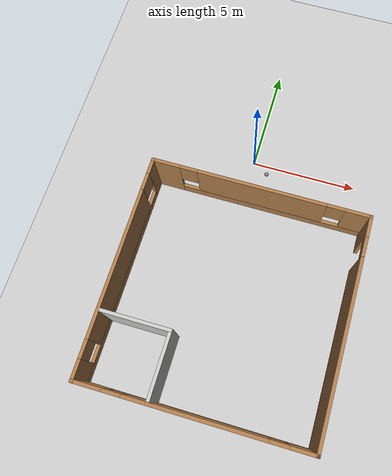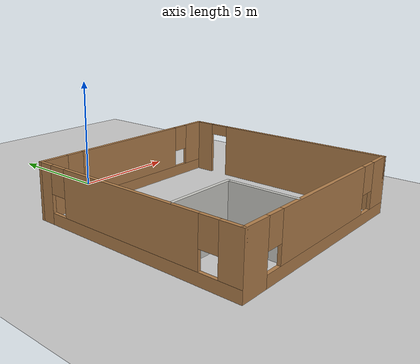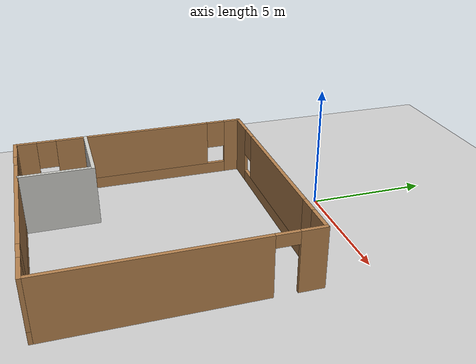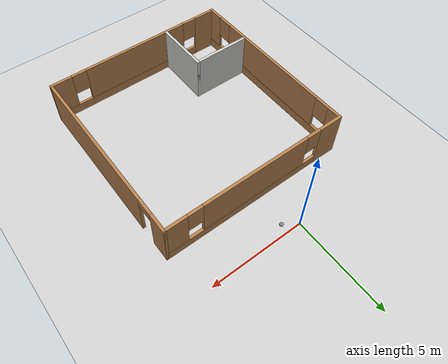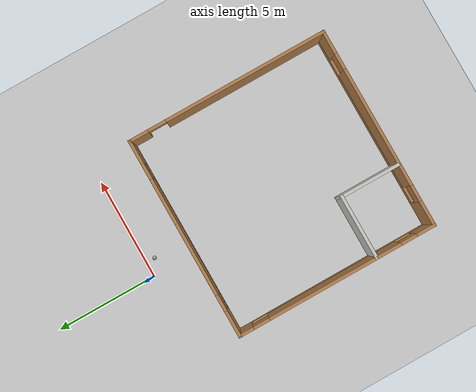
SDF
<sdf version="1.6">
 <world name="default">
  <plugin name="hello" filename="libhello.so"/>
  <light name="sun" type="directional">
   <pose>0 0 10 0 -0 0</pose>
   <diffuse>0.8 0.8 0.8 1</diffuse>
   <specular>0.2 0.2 0.2 1</specular>
   <attenuation>
    <range>1000</range>
    <constant>0.9</constant>
    <linear>0.01</linear>
    <quadratic>0.001</quadratic>
   </attenuation>
   <direction>-0.5 0.1 -0.9</direction>
  </light>
  <model name="ground_plane">
   <static>1</static>
   <link name="link">
    <collision name="collision">
     <geometry><plane><normal>0 0 1</normal><size>100 100</size></plane></geometry>
     <surface>
      <contact><collide_bitmask>65535</collide_bitmask></contact>
      <friction><ode><mu>100</mu><mu2>50</mu2></ode></friction>
     </surface>
    </collision>
    <visual name="visual">
     <cast_shadows>0</cast_shadows>
     <geometry><plane><normal>0 0 1</normal><size>100 100</size></plane></geometry>
     <material>
      <script><uri>file://media/materials/scripts/gazebo.material</uri><name>Gazebo/Grey</name></script>
     </material>
    </visual>
   </link>
  </model>
  <gravity>0 0 -9.8</gravity>
  <magnetic_field>6e-06 2.3e-05 -4.2e-05</magnetic_field>
  <atmosphere type="adiabatic"/>
  <physics name="default_physics" default="0" type="ode">
   <max_step_size>0.001</max_step_size>
   <real_time_factor>1</real_time_factor>
   <real_time_update_rate>1000</real_time_update_rate>
  </physics>
  <scene><ambient>0.4 0.4 0.4 1</ambient><background>0.7 0.7 0.7 1</background><shadows>1</shadows></scene>
  <spherical_coordinates>
   <surface_model>EARTH_WGS84</surface_model>
   <latitude_deg>0</latitude_deg>
   <longitude_deg>0</longitude_deg>
   <elevation>0</elevation>
   <heading_deg>0</heading_deg>
  </spherical_coordinates>
  <model name="building">
   <pose>0.805 -7.135 0 0 -0 0</pose>
   <link name="Wall_64">
    <pose>0 4.925 0 0 -0 0</pose>
    <visual name="Wall_64_Visual_0">
     <pose>-4.3325 0 1.25 0 -0 0</pose>
     <geometry><box><size>1.335 0.15 2.5</size></box></geometry>
     <material>
      <script><uri>file://media/materials/scripts/gazebo.material</uri><name>Gazebo/Wood</name></script>
      <ambient>1 1 1 1</ambient>
     </material>
     <meta><layer>0</layer></meta>
    </visual>
    <collision name="Wall_64_Collision_0">
     <geometry><box><size>1.335 0.15 2.5</size></box></geometry>
     <pose>-4.3325 0 1.25 0 -0 0</pose>
    </collision>
    <visual name="Wall_64_Visual_1">
     <pose>0.6675 0 0.25 0 -0 0</pose>
     <geometry><box><size>8.665 0.15 0.5</size></box></geometry>
     <material>
      <script><uri>file://media/materials/scripts/gazebo.material</uri><name>Gazebo/Wood</name></script>
      <ambient>1 1 1 1</ambient>
     </material>
     <meta><layer>0</layer></meta>
    </visual>
    <collision name="Wall_64_Collision_1">
     <geometry><box><size>8.665 0.15 0.5</size></box></geometry>
     <pose>0.6675 0 0.25 0 -0 0</pose>
    </collision>
    <visual name="Wall_64_Visual_2">
     <pose>0.065 0 1.5 0 -0 0</pose>
     <geometry><box><size>5.86 0.15 2</size></box></geometry>
     <material>
      <script><uri>file://media/materials/scripts/gazebo.material</uri><name>Gazebo/Wood</name></script>
      <ambient>1 1 1 1</ambient>
     </material>
     <meta><layer>0</layer></meta>
    </visual>
    <collision name="Wall_64_Collision_2">
     <geometry><box><size>5.86 0.15 2</size></box></geometry>
     <pose>0.065 0 1.5 0 -0 0</pose>
    </collision>
    <visual name="Wall_64_Visual_3">
     <pose>4.3975 0 1.5 0 -0 0</pose>
     <geometry><box><size>1.205 0.15 2</size></box></geometry>
     <material>
      <script><uri>file://media/materials/scripts/gazebo.material</uri><name>Gazebo/Wood</name></script>
      <ambient>1 1 1 1</ambient>
     </material>
     <meta><layer>0</layer></meta>
    </visual>
    <collision name="Wall_64_Collision_3">
     <geometry><box><size>1.205 0.15 2</size></box></geometry>
     <pose>4.3975 0 1.5 0 -0 0</pose>
    </collision>
    <visual name="Wall_64_Visual_4">
     <pose>-3.265 0 1.9 0 -0 0</pose>
     <geometry><box><size>0.8 0.15 1.2</size></box></geometry>
     <material>
      <script><uri>file://media/materials/scripts/gazebo.material</uri><name>Gazebo/Wood</name></script>
      <ambient>1 1 1 1</ambient>
     </material>
     <meta><layer>0</layer></meta>
    </visual>
    <collision name="Wall_64_Collision_4">
     <geometry><box><size>0.8 0.15 1.2</size></box></geometry>
     <pose>-3.265 0 1.9 0 -0 0</pose>
    </collision>
    <visual name="Wall_64_Visual_5">
     <pose>3.395 0 1.9 0 -0 0</pose>
     <geometry><box><size>0.8 0.15 1.2</size></box></geometry>
     <material>
      <script><uri>file://media/materials/scripts/gazebo.material</uri><name>Gazebo/Wood</name></script>
      <ambient>1 1 1 1</ambient>
     </material>
     <meta><layer>0</layer></meta>
    </visual>
    <collision name="Wall_64_Collision_5">
     <geometry><box><size>0.8 0.15 1.2</size></box></geometry>
     <pose>3.395 0 1.9 0 -0 0</pose>
    </collision>
   </link>
   <link name="Wall_66">
    <pose>-4.925 0 0 0 0 -1.5708</pose>
    <visual name="Wall_66_Visual_0">
     <pose>-4.6125 0 1.25 0 -0 0</pose>
     <geometry><box><size>0.775 0.15 2.5</size></box></geometry>
     <material>
      <script><uri>file://media/materials/scripts/gazebo.material</uri><name>Gazebo/Wood</name></script>
      <ambient>1 1 1 1</ambient>
     </material>
     <meta><layer>0</layer></meta>
    </visual>
    <collision name="Wall_66_Collision_0">
     <geometry><box><size>0.775 0.15 2.5</size></box></geometry>
     <pose>-4.6125 0 1.25 0 -0 0</pose>
    </collision>
    <visual name="Wall_66_Visual_1">
     <pose>0.3875 0 0.25 0 -0 0</pose>
     <geometry><box><size>9.225 0.15 0.5</size></box></geometry>
     <material>
      <script><uri>file://media/materials/scripts/gazebo.material</uri><name>Gazebo/Wood</name></script>
      <ambient>1 1 1 1</ambient>
     </material>
     <meta><layer>0</layer></meta>
    </visual>
    <collision name="Wall_66_Collision_1">
     <geometry><box><size>9.225 0.15 0.5</size></box></geometry>
     <pose>0.3875 0 0.25 0 -0 0</pose>
    </collision>
    <visual name="Wall_66_Visual_2">
     <pose>-0.085 0 1.5 0 -0 0</pose>
     <geometry><box><size>6.68 0.15 2</size></box></geometry>
     <material>
      <script><uri>file://media/materials/scripts/gazebo.material</uri><name>Gazebo/Wood</name></script>
      <ambient>1 1 1 1</ambient>
     </material>
     <meta><layer>0</layer></meta>
    </visual>
    <collision name="Wall_66_Collision_2">
     <geometry><box><size>6.68 0.15 2</size></box></geometry>
     <pose>-0.085 0 1.5 0 -0 0</pose>
    </collision>
    <visual name="Wall_66_Visual_3">
     <pose>4.5275 0 1.5 0 -0 0</pose>
     <geometry><box><size>0.945 0.15 2</size></box></geometry>
     <material>
      <script><uri>file://media/materials/scripts/gazebo.material</uri><name>Gazebo/Wood</name></script>
      <ambient>1 1 1 1</ambient>
     </material>
     <meta><layer>0</layer></meta>
    </visual>
    <collision name="Wall_66_Collision_3">
     <geometry><box><size>0.945 0.15 2</size></box></geometry>
     <pose>4.5275 0 1.5 0 -0 0</pose>
    </collision>
    <visual name="Wall_66_Visual_4">
     <pose>-3.825 0 1.9 0 -0 0</pose>
     <geometry><box><size>0.8 0.15 1.2</size></box></geometry>
     <material>
      <script><uri>file://media/materials/scripts/gazebo.material</uri><name>Gazebo/Wood</name></script>
      <ambient>1 1 1 1</ambient>
     </material>
     <meta><layer>0</layer></meta>
    </visual>
    <collision name="Wall_66_Collision_4">
     <geometry><box><size>0.8 0.15 1.2</size></box></geometry>
     <pose>-3.825 0 1.9 0 -0 0</pose>
    </collision>
    <visual name="Wall_66_Visual_5">
     <pose>3.655 0 1.9 0 -0 0</pose>
     <geometry><box><size>0.8 0.15 1.2</size></box></geometry>
     <material>
      <script><uri>file://media/materials/scripts/gazebo.material</uri><name>Gazebo/Wood</name></script>
      <ambient>1 1 1 1</ambient>
     </material>
     <meta><layer>0</layer></meta>
    </visual>
    <collision name="Wall_66_Collision_5">
     <geometry><box><size>0.8 0.15 1.2</size></box></geometry>
     <pose>3.655 0 1.9 0 -0 0</pose>
    </collision>
   </link>
   <link name="Wall_68">
    <pose>4.925 0 0 0 0 -1.5708</pose>
    <visual name="Wall_68_Visual_0">
     <pose>-4.4925 0 1.25 0 -0 0</pose>
     <geometry><box><size>1.015 0.15 2.5</size></box></geometry>
     <material>
      <script><uri>file://media/materials/scripts/gazebo.material</uri><name>Gazebo/Wood</name></script>
      <ambient>1 1 1 1</ambient>
     </material>
     <meta><layer>0</layer></meta>
    </visual>
    <collision name="Wall_68_Collision_0">
     <geometry><box><size>1.015 0.15 2.5</size></box></geometry>
     <pose>-4.4925 0 1.25 0 -0 0</pose>
    </collision>
    <visual name="Wall_68_Visual_1">
     <pose>0.9575 0 1.25 0 -0 0</pose>
     <geometry><box><size>8.085 0.15 2.5</size></box></geometry>
     <material>
      <script><uri>file://media/materials/scripts/gazebo.material</uri><name>Gazebo/Wood</name></script>
      <ambient>1 1 1 1</ambient>
     </material>
     <meta><layer>0</layer></meta>
    </visual>
    <collision name="Wall_68_Collision_1">
     <geometry><box><size>8.085 0.15 2.5</size></box></geometry>
     <pose>0.9575 0 1.25 0 -0 0</pose>
    </collision>
    <visual name="Wall_68_Visual_2">
     <pose>-3.535 0 2.25 0 -0 0</pose>
     <geometry><box><size>0.9 0.15 0.5</size></box></geometry>
     <material>
      <script><uri>file://media/materials/scripts/gazebo.material</uri><name>Gazebo/Wood</name></script>
      <ambient>1 1 1 1</ambient>
     </material>
     <meta><layer>0</layer></meta>
    </visual>
    <collision name="Wall_68_Collision_2">
     <geometry><box><size>0.9 0.15 0.5</size></box></geometry>
     <pose>-3.535 0 2.25 0 -0 0</pose>
    </collision>
   </link>
   <link name="Wall_70">
    <pose>0 -4.925 0 0 -0 0</pose>
    <visual name="Wall_70_Visual_0">
     <pose>-4.3525 0 1.25 0 -0 0</pose>
     <geometry><box><size>1.295 0.15 2.5</size></box></geometry>
     <material>
      <script><uri>file://media/materials/scripts/gazebo.material</uri><name>Gazebo/Wood</name></script>
      <ambient>1 1 1 1</ambient>
     </material>
     <meta><layer>0</layer></meta>
    </visual>
    <collision name="Wall_70_Collision_0">
     <geometry><box><size>1.295 0.15 2.5</size></box></geometry>
     <pose>-4.3525 0 1.25 0 -0 0</pose>
    </collision>
    <visual name="Wall_70_Visual_1">
     <pose>0.6475 0 0.25 0 -0 0</pose>
     <geometry><box><size>8.705 0.15 0.5</size></box></geometry>
     <material>
      <script><uri>file://media/materials/scripts/gazebo.material</uri><name>Gazebo/Wood</name></script>
      <ambient>1 1 1 1</ambient>
     </material>
     <meta><layer>0</layer></meta>
    </visual>
    <collision name="Wall_70_Collision_1">
     <geometry><box><size>8.705 0.15 0.5</size></box></geometry>
     <pose>0.6475 0 0.25 0 -0 0</pose>
    </collision>
    <visual name="Wall_70_Visual_2">
     <pose>0.06 0 1.5 0 -0 0</pose>
     <geometry><box><size>5.93 0.15 2</size></box></geometry>
     <material>
      <script><uri>file://media/materials/scripts/gazebo.material</uri><name>Gazebo/Wood</name></script>
      <ambient>1 1 1 1</ambient>
     </material>
     <meta><layer>0</layer></meta>
    </visual>
    <collision name="Wall_70_Collision_2">
     <geometry><box><size>5.93 0.15 2</size></box></geometry>
     <pose>0.06 0 1.5 0 -0 0</pose>
    </collision>
    <visual name="Wall_70_Visual_3">
     <pose>4.4125 0 1.5 0 -0 0</pose>
     <geometry><box><size>1.175 0.15 2</size></box></geometry>
     <material>
      <script><uri>file://media/materials/scripts/gazebo.material</uri><name>Gazebo/Wood</name></script>
      <ambient>1 1 1 1</ambient>
     </material>
     <meta><layer>0</layer></meta>
    </visual>
    <collision name="Wall_70_Collision_3">
     <geometry><box><size>1.175 0.15 2</size></box></geometry>
     <pose>4.4125 0 1.5 0 -0 0</pose>
    </collision>
    <visual name="Wall_70_Visual_4">
     <pose>-3.305 0 1.9 0 -0 0</pose>
     <geometry><box><size>0.8 0.15 1.2</size></box></geometry>
     <material>
      <script><uri>file://media/materials/scripts/gazebo.material</uri><name>Gazebo/Wood</name></script>
      <ambient>1 1 1 1</ambient>
     </material>
     <meta><layer>0</layer></meta>
    </visual>
    <collision name="Wall_70_Collision_4">
     <geometry><box><size>0.8 0.15 1.2</size></box></geometry>
     <pose>-3.305 0 1.9 0 -0 0</pose>
    </collision>
    <visual name="Wall_70_Visual_5">
     <pose>3.425 0 1.9 0 -0 0</pose>
     <geometry><box><size>0.8 0.15 1.2</size></box></geometry>
     <material>
      <script><uri>file://media/materials/scripts/gazebo.material</uri><name>Gazebo/Wood</name></script>
      <ambient>1 1 1 1</ambient>
     </material>
     <meta><layer>0</layer></meta>
    </visual>
    <collision name="Wall_70_Collision_5">
     <geometry><box><size>0.8 0.15 1.2</size></box></geometry>
     <pose>3.425 0 1.9 0 -0 0</pose>
    </collision>
   </link>
   <link name="Wall_96">
    <collision name="Wall_96_Collision">
     <geometry><box><size>3.25 0.15 2.5</size></box></geometry>
     <pose>0 0 1.25 0 -0 0</pose>
    </collision>
    <visual name="Wall_96_Visual">
     <pose>0 0 1.25 0 -0 0</pose>
     <geometry><box><size>3.25 0.15 2.5</size></box></geometry>
     <material>
      <script><uri>file://media/materials/scripts/gazebo.material</uri><name>Gazebo/CeilingTiled</name></script>
      <ambient>0 1 0 1</ambient>
     </material>
     <meta><layer>0</layer></meta>
    </visual>
    <pose>-3.375 -2.015 0 0 -0 0</pose>
   </link>
   <link name="Wall_99">
    <collision name="Wall_99_Collision">
     <geometry><box><size>3 0.15 2.5</size></box></geometry>
     <pose>0 0 1.25 0 -0 0</pose>
    </collision>
    <visual name="Wall_99_Visual">
     <pose>0 0 1.25 0 -0 0</pose>
     <geometry><box><size>3 0.15 2.5</size></box></geometry>
     <material>
      <script><uri>file://media/materials/scripts/gazebo.material</uri><name>Gazebo/CeilingTiled</name></script>
      <ambient>0 1 0 1</ambient>
     </material>
     <meta><layer>0</layer></meta>
    </visual>
    <pose>-1.825 -3.44 0 0 0 -1.5708</pose>
   </link>
   <static>1</static>
  </model>
  <model name="my_ball">
   <link name="link_0">
    <inertial>
     <mass>1</mass>
     <inertia><ixx>0.1</ixx><ixy>0</ixy><ixz>0</ixz><iyy>0.1</iyy><iyz>0</iyz><izz>0.1</izz></inertia>
    </inertial>
    <visual name="visual">
     <geometry><sphere><radius>0.1</radius></sphere></geometry>
     <material>
      <lighting>1</lighting>
      <script><uri>file://media/materials/scripts/gazebo.material</uri><name>Gazebo/Grey</name></script>
      <shader type="pixel"><normal_map>__default__</normal_map></shader>
      <ambient>1 1 1 1</ambient>
      <diffuse>1 1 1 1</diffuse>
      <specular>1 1 1 1</specular>
      <emissive>1 1 1 1</emissive>
     </material>
    </visual>
    <collision name="collision">
     <geometry><sphere><radius>0.1</radius></sphere></geometry>
     <surface>
      <friction>
       <ode><mu>1</mu><mu2>1</mu2><fdir1>0 0 0</fdir1><slip1>0</slip1><slip2>0</slip2></ode>
       <torsional>
        <coefficient>1</coefficient>
        <patch_radius>0</patch_radius>
        <surface_radius>0</surface_radius>
        <use_patch_radius>1</use_patch_radius>
        <ode><slip>0</slip></ode>
       </torsional>
      </friction>
      <bounce><restitution_coefficient>0</restitution_coefficient><threshold>1e+06</threshold></bounce>
      <contact>
       <collide_without_contact>0</collide_without_contact>
       <collide_without_contact_bitmask>1</collide_without_contact_bitmask>
       <collide_bitmask>1</collide_bitmask>
       <ode>
        <soft_cfm>0</soft_cfm>
        <soft_erp>0.2</soft_erp>
        <kp>1e+13</kp>
        <kd>1</kd>
        <max_vel>0.01</max_vel>
        <min_depth>0</min_depth>
       </ode>
       <bullet>
        <split_impulse>1</split_impulse>
        <split_impulse_penetration_threshold>-0.01</split_impulse_penetration_threshold>
        <soft_cfm>0</soft_cfm>
        <soft_erp>0.2</soft_erp>
        <kp>1e+13</kp>
        <kd>1</kd>
       </bullet>
      </contact>
     </surface>
    </collision>
   </link>
   <static>0</static>
   <pose>0.737279 -0.439488 0.1 0 -0 0</pose>
  </model>
  <plugin filename="libcollision_map_creator.so" name="collision_map_creator"/>
 </world>
</sdf>
